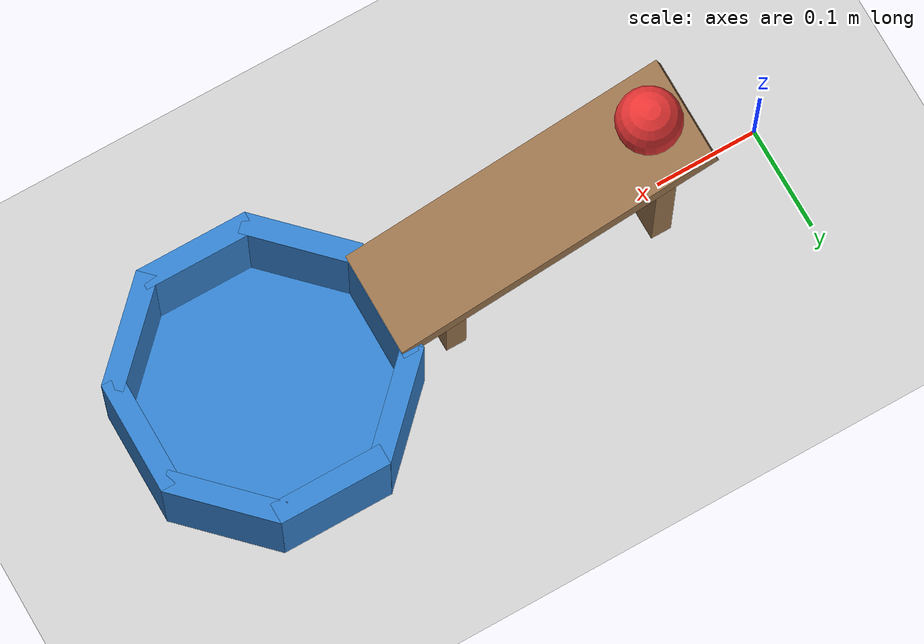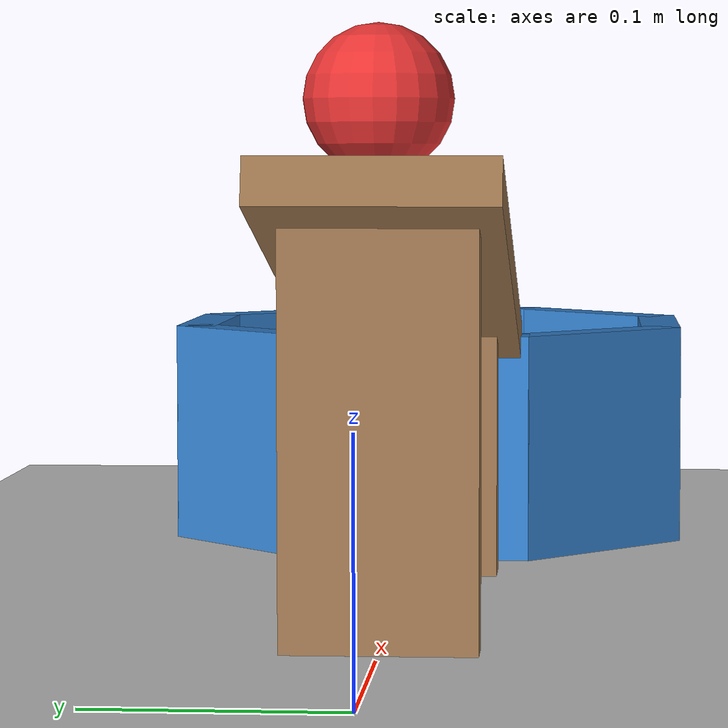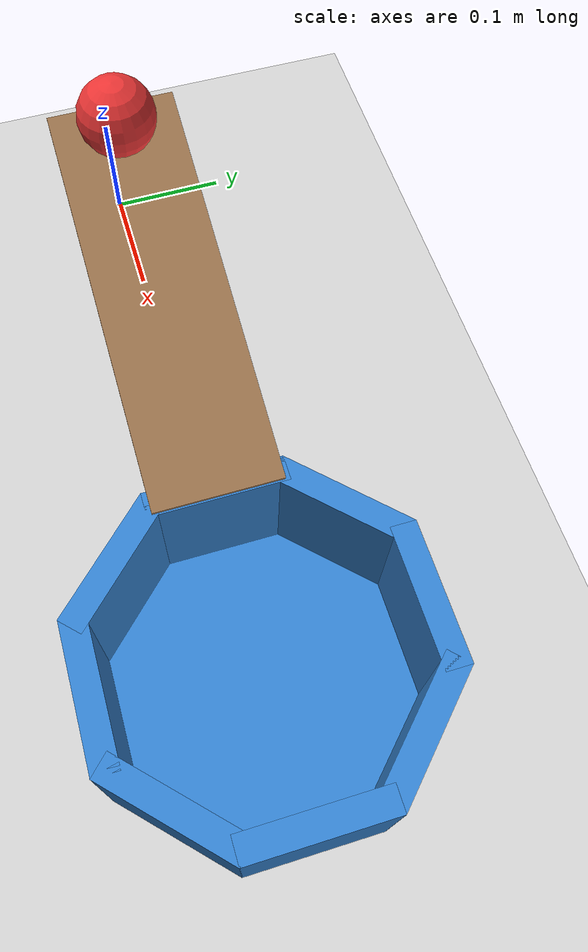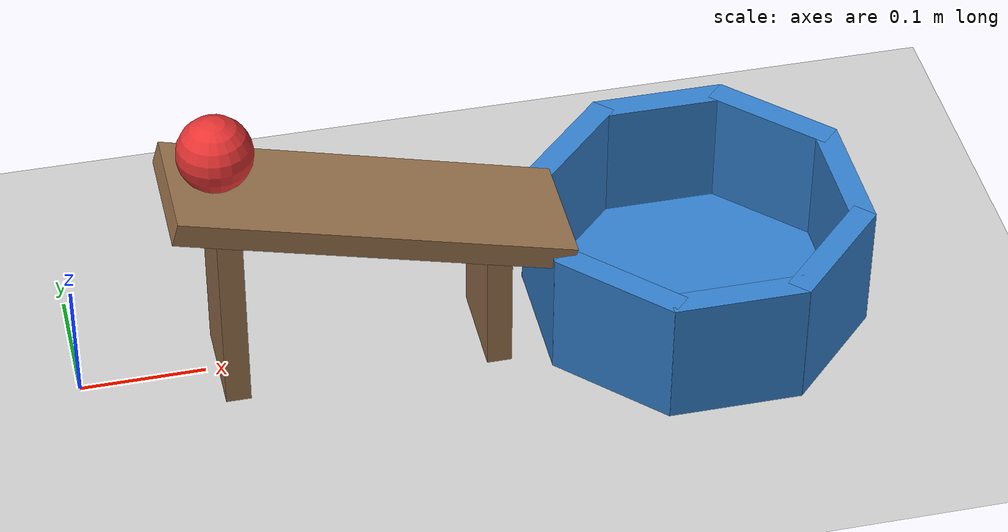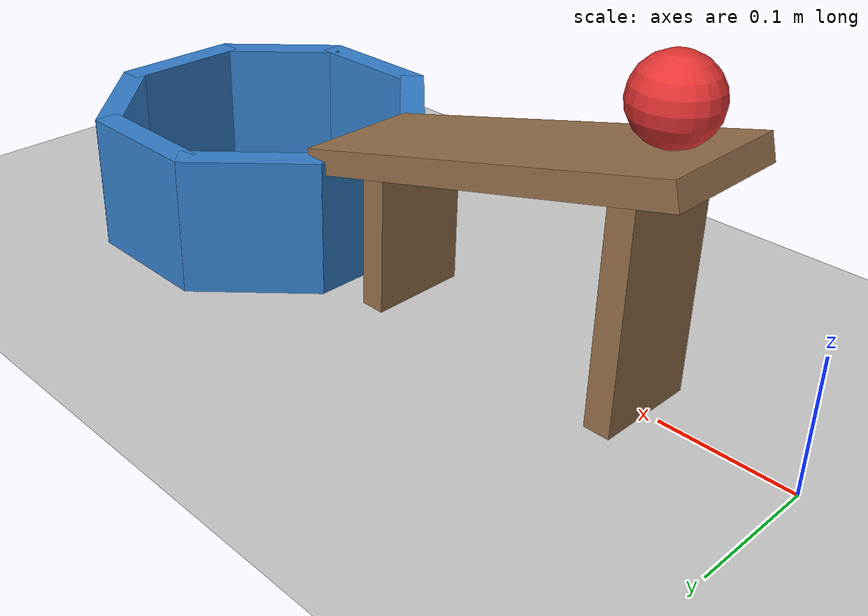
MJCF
<mujoco model="ball_ramp_cup">
  <compiler angle="degree"/>
  <option timestep="0.002" gravity="0 0 -9.81"/>

  <visual>
    <global offwidth="1280" offheight="720"/>
  </visual>

  <asset>
    <material name="floor_mat" rgba="0.8 0.8 0.8 1"/>
    <material name="ramp_mat" rgba="0.6 0.45 0.3 1"/>
    <material name="cup_mat" rgba="0.2 0.5 0.8 1"/>
    <material name="ball_mat" rgba="0.9 0.2 0.2 1"/>
  </asset>

  <worldbody>
    <light name="sun" pos="0.3 -0.5 1.5" dir="0 0.3 -1" directional="true"/>
    <camera name="side" pos="0.35 -1.0 0.35" xyaxes="1 0 0 0 0.3 1"/>

    <geom name="floor" type="plane" size="2 2 0.1" material="floor_mat"/>

    <!-- Ramp: 15 deg incline, top surface from (0.081, 0.198) down to (0.39, 0.115) -->
    <geom name="ramp_board" type="box" size="0.16 0.05 0.01" pos="0.2329 0 0.1467" euler="0 15 0" material="ramp_mat"/>
    <geom name="ramp_support_high" type="box" size="0.01 0.04 0.088" pos="0.12 0 0.088" material="ramp_mat"/>
    <geom name="ramp_support_low" type="box" size="0.01 0.04 0.06" pos="0.33 0 0.06" material="ramp_mat"/>

    <!-- Cup: octagonal walls, inner apothem 0.11 m, rim at z = 0.11 -->
    <body name="cup" pos="0.5 0 0">
      <geom name="cup_bottom" type="cylinder" size="0.13 0.005" pos="0 0 0.005" material="cup_mat"/>
      <geom name="cup_wall_0" type="box" size="0.01 0.054 0.055" pos="0.12 0 0.055" euler="0 0 0" material="cup_mat"/>
      <geom name="cup_wall_45" type="box" size="0.01 0.054 0.055" pos="0.0849 0.0849 0.055" euler="0 0 45" material="cup_mat"/>
      <geom name="cup_wall_90" type="box" size="0.01 0.054 0.055" pos="0 0.12 0.055" euler="0 0 90" material="cup_mat"/>
      <geom name="cup_wall_135" type="box" size="0.01 0.054 0.055" pos="-0.0849 0.0849 0.055" euler="0 0 135" material="cup_mat"/>
      <geom name="cup_wall_180" type="box" size="0.01 0.054 0.055" pos="-0.12 0 0.055" euler="0 0 180" material="cup_mat"/>
      <geom name="cup_wall_225" type="box" size="0.01 0.054 0.055" pos="-0.0849 -0.0849 0.055" euler="0 0 225" material="cup_mat"/>
      <geom name="cup_wall_270" type="box" size="0.01 0.054 0.055" pos="0 -0.12 0.055" euler="0 0 270" material="cup_mat"/>
      <geom name="cup_wall_315" type="box" size="0.01 0.054 0.055" pos="0.0849 -0.0849 0.055" euler="0 0 315" material="cup_mat"/>
    </body>

    <!-- Ball: radius 3 cm, starts resting on the upper end of the ramp -->
    <body name="ball" pos="0.118 0 0.22">
      <freejoint name="ball_free"/>
      <geom name="ball" type="sphere" size="0.03" mass="0.1" condim="6" friction="0.8 0.005 0.001" material="ball_mat"/>
    </body>
  </worldbody>

  <keyframe>
    <key name="start" qpos="0.118 0 0.22 1 0 0 0" qvel="0 0 0 0 0 0"/>
  </keyframe>
</mujoco>
